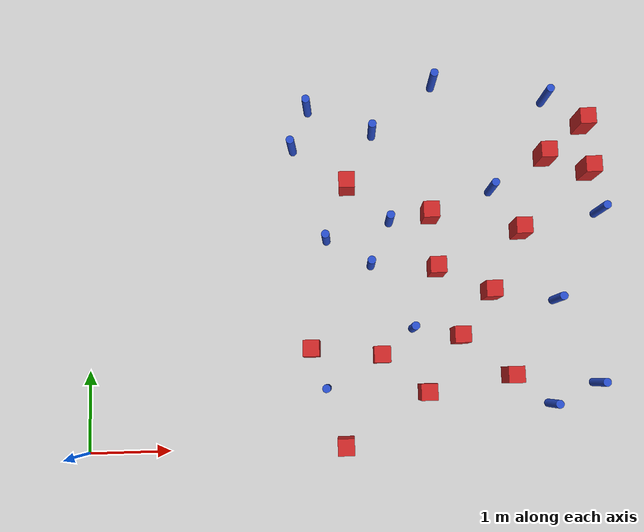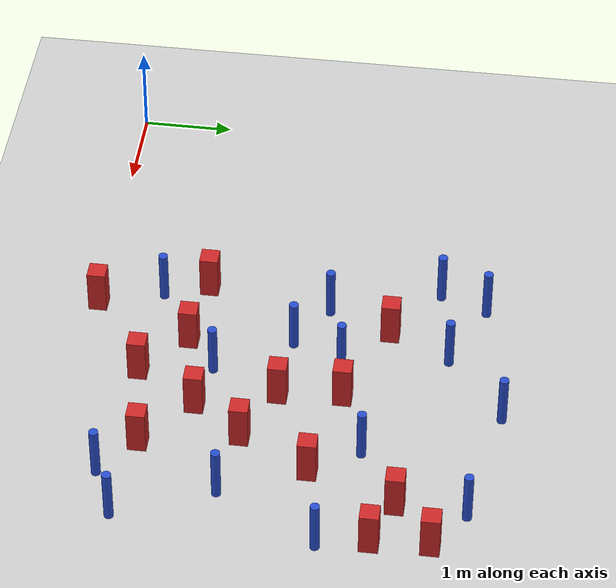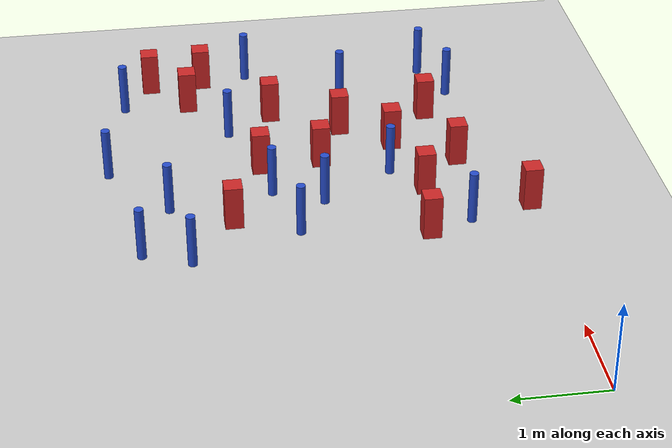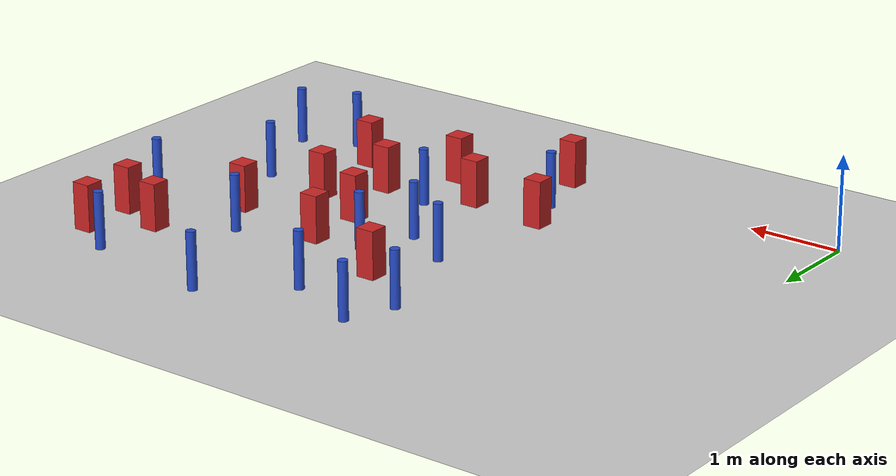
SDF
<sdf version="1.6">
 <world name="default">
  <model name="ground_plane">
   <static>1</static>
   <link name="link">
    <collision name="collision">
     <geometry><plane><normal>0 0 1</normal><size>100 100</size></plane></geometry>
     <surface><friction><ode><mu>100</mu><mu2>50</mu2></ode></friction></surface>
    </collision>
    <visual name="visual">
     <cast_shadows>0</cast_shadows>
     <geometry><plane><normal>0 0 1</normal><size>100 100</size></plane></geometry>
     <material>
      <ambient>1.0 1.0 1.0 1.0</ambient>
      <diffuse>0.8 0.8 0.8 1.0</diffuse>
      <specular>0.01 0.01 0.01 1.000000</specular>
     </material>
    </visual>
   </link>
  </model>
  <model name="pole_obstacle2">
   <static>true</static>
   <pose>3.53113890478 2.21635083177 -9.47619616065e-06 5.49618799737e-07 2.36310414051e-07 -1.55090534807e-07</pose>
   <link name="link">
    <pose>0 0 0.3 0 -0 0</pose>
    <inertial>
     <mass>1</mass>
     <inertia><ixx>0.145833</ixx><ixy>0</ixy><ixz>0</ixz><iyy>0.145833</iyy><iyz>0</iyz><izz>0.125</izz></inertia>
    </inertial>
    <collision name="collision">
     <geometry><cylinder><radius>0.05</radius><length>.6</length></cylinder></geometry>
    </collision>
    <visual name="visual">
     <geometry><cylinder><radius>0.05</radius><length>.6</length></cylinder></geometry>
     <material>
      <script><name>Gazebo/Blue</name><uri>file://media/materials/scripts/gazebo.material</uri></script>
     </material>
    </visual>
   </link>
  </model>
  <model name="pole_obstacle8">
   <static>true</static>
   <pose>5.81048403324 4.28842071337 -9.47619616065e-06 5.49618799737e-07 2.36310414037e-07 -1.55090534814e-07</pose>
   <link name="link">
    <pose>0 0 0.3 0 -0 0</pose>
    <inertial>
     <mass>1</mass>
     <inertia><ixx>0.145833</ixx><ixy>0</ixy><ixz>0</ixz><iyy>0.145833</iyy><iyz>0</iyz><izz>0.125</izz></inertia>
    </inertial>
    <collision name="collision">
     <geometry><cylinder><radius>0.05</radius><length>.6</length></cylinder></geometry>
    </collision>
    <visual name="visual">
     <geometry><cylinder><radius>0.05</radius><length>.6</length></cylinder></geometry>
     <material>
      <script><name>Gazebo/Blue</name><uri>file://media/materials/scripts/gazebo.material</uri></script>
     </material>
    </visual>
   </link>
  </model>
  <model name="square_post_obstacle28">
   <static>true</static>
   <pose>5.21339870408 0.800874993577 -6.11067671241e-07 -5.50515727128e-06 -8.79689657224e-07 2.37013304536e-05</pose>
   <link name="link">
    <pose>0 0 0.25 0 -0 0</pose>
    <inertial>
     <mass>100</mass>
     <inertia>
      <ixx>0.166667</ixx>
      <ixy>0</ixy>
      <ixz>0</ixz>
      <iyy>0.166667</iyy>
      <iyz>0</iyz>
      <izz>0.166667</izz>
     </inertia>
    </inertial>
    <collision name="collision"><geometry><box><size>.2 .2 .5</size></box></geometry></collision>
    <visual name="visual">
     <geometry><box><size>.2 .2 .5</size></box></geometry>
     <material>
      <script><name>Gazebo/Red</name><uri>file://media/materials/scripts/gazebo.material</uri></script>
     </material>
    </visual>
   </link>
  </model>
  <model name="pole_obstacle19">
   <static>true</static>
   <pose>5.80837014451 1.71492182112 -9.47619616065e-06 5.49618799738e-07 2.36310414071e-07 -1.55090534796e-07</pose>
   <link name="link">
    <pose>0 0 0.3 0 -0 0</pose>
    <inertial>
     <mass>1</mass>
     <inertia><ixx>0.145833</ixx><ixy>0</ixy><ixz>0</ixz><iyy>0.145833</iyy><iyz>0</iyz><izz>0.125</izz></inertia>
    </inertial>
    <collision name="collision">
     <geometry><cylinder><radius>0.05</radius><length>.6</length></cylinder></geometry>
    </collision>
    <visual name="visual">
     <geometry><cylinder><radius>0.05</radius><length>.6</length></cylinder></geometry>
     <material>
      <script><name>Gazebo/Blue</name><uri>file://media/materials/scripts/gazebo.material</uri></script>
     </material>
    </visual>
   </link>
  </model>
  <model name="square_post_obstacle32">
   <static>true</static>
   <pose>4.34222511146 2.15220514527 -6.11067671241e-07 -5.50515727128e-06 -8.79689657224e-07 2.37013304536e-05</pose>
   <link name="link">
    <pose>0 0 0.25 0 -0 0</pose>
    <inertial>
     <mass>100</mass>
     <inertia>
      <ixx>0.166667</ixx>
      <ixy>0</ixy>
      <ixz>0</ixz>
      <iyy>0.166667</iyy>
      <iyz>0</iyz>
      <izz>0.166667</izz>
     </inertia>
    </inertial>
    <collision name="collision"><geometry><box><size>.2 .2 .5</size></box></geometry></collision>
    <visual name="visual">
     <geometry><box><size>.2 .2 .5</size></box></geometry>
     <material>
      <script><name>Gazebo/Red</name><uri>file://media/materials/scripts/gazebo.material</uri></script>
     </material>
    </visual>
   </link>
  </model>
  <model name="pole_obstacle33">
   <static>true</static>
   <pose>2.94641307945 0.705355554668 -9.47619616065e-06 5.49618799738e-07 2.36310414075e-07 -1.55090534793e-07</pose>
   <link name="link">
    <pose>0 0 0.3 0 -0 0</pose>
    <inertial>
     <mass>1</mass>
     <inertia><ixx>0.145833</ixx><ixy>0</ixy><ixz>0</ixz><iyy>0.145833</iyy><iyz>0</iyz><izz>0.125</izz></inertia>
    </inertial>
    <collision name="collision">
     <geometry><cylinder><radius>0.05</radius><length>.6</length></cylinder></geometry>
    </collision>
    <visual name="visual">
     <geometry><cylinder><radius>0.05</radius><length>.6</length></cylinder></geometry>
     <material>
      <script><name>Gazebo/Blue</name><uri>file://media/materials/scripts/gazebo.material</uri></script>
     </material>
    </visual>
   </link>
  </model>
  <model name="square_post_obstacle42">
   <static>true</static>
   <pose>4.59890977952 1.30032857179 -6.11067671241e-07 -5.50515727128e-06 -8.79689657224e-07 2.37013304536e-05</pose>
   <link name="link">
    <pose>0 0 0.25 0 -0 0</pose>
    <inertial>
     <mass>100</mass>
     <inertia>
      <ixx>0.166667</ixx>
      <ixy>0</ixy>
      <ixz>0</ixz>
      <iyy>0.166667</iyy>
      <iyz>0</iyz>
      <izz>0.166667</izz>
     </inertia>
    </inertial>
    <collision name="collision"><geometry><box><size>.2 .2 .5</size></box></geometry></collision>
    <visual name="visual">
     <geometry><box><size>.2 .2 .5</size></box></geometry>
     <material>
      <script><name>Gazebo/Red</name><uri>file://media/materials/scripts/gazebo.material</uri></script>
     </material>
    </visual>
   </link>
  </model>
  <model name="square_post_obstacle57">
   <static>true</static>
   <pose>3.25659911849 3.23759663204 -6.11067671241e-07 -5.50515727128e-06 -8.79689657224e-07 2.37013304536e-05</pose>
   <link name="link">
    <pose>0 0 0.25 0 -0 0</pose>
    <inertial>
     <mass>100</mass>
     <inertia>
      <ixx>0.166667</ixx>
      <ixy>0</ixy>
      <ixz>0</ixz>
      <iyy>0.166667</iyy>
      <iyz>0</iyz>
      <izz>0.166667</izz>
     </inertia>
    </inertial>
    <collision name="collision"><geometry><box><size>.2 .2 .5</size></box></geometry></collision>
    <visual name="visual">
     <geometry><box><size>.2 .2 .5</size></box></geometry>
     <material>
      <script><name>Gazebo/Red</name><uri>file://media/materials/scripts/gazebo.material</uri></script>
     </material>
    </visual>
   </link>
  </model>
  <model name="pole_obstacle69">
   <static>true</static>
   <pose>5.67771473059 0.440851921993 -9.47619616065e-06 5.49618799737e-07 2.36310414057e-07 -1.55090534802e-07</pose>
   <link name="link">
    <pose>0 0 0.3 0 -0 0</pose>
    <inertial>
     <mass>1</mass>
     <inertia><ixx>0.145833</ixx><ixy>0</ixy><ixz>0</ixz><iyy>0.145833</iyy><iyz>0</iyz><izz>0.125</izz></inertia>
    </inertial>
    <collision name="collision">
     <geometry><cylinder><radius>0.05</radius><length>.6</length></cylinder></geometry>
    </collision>
    <visual name="visual">
     <geometry><cylinder><radius>0.05</radius><length>.6</length></cylinder></geometry>
     <material>
      <script><name>Gazebo/Blue</name><uri>file://media/materials/scripts/gazebo.material</uri></script>
     </material>
    </visual>
   </link>
  </model>
  <model name="pole_obstacle73">
   <static>true</static>
   <pose>3.59469836904 3.90290021158 -9.47619616065e-06 5.49618799737e-07 2.36310414051e-07 -1.55090534807e-07</pose>
   <link name="link">
    <pose>0 0 0.3 0 -0 0</pose>
    <inertial>
     <mass>1</mass>
     <inertia><ixx>0.145833</ixx><ixy>0</ixy><ixz>0</ixz><iyy>0.145833</iyy><iyz>0</iyz><izz>0.125</izz></inertia>
    </inertial>
    <collision name="collision">
     <geometry><cylinder><radius>0.05</radius><length>.6</length></cylinder></geometry>
    </collision>
    <visual name="visual">
     <geometry><cylinder><radius>0.05</radius><length>.6</length></cylinder></geometry>
     <material>
      <script><name>Gazebo/Blue</name><uri>file://media/materials/scripts/gazebo.material</uri></script>
     </material>
    </visual>
   </link>
  </model>
  <model name="square_post_obstacle78">
   <static>true</static>
   <pose>4.1668135629 0.625565197173 -6.11067671241e-07 -5.50515727128e-06 -8.79689657224e-07 2.37013304536e-05</pose>
   <link name="link">
    <pose>0 0 0.25 0 -0 0</pose>
    <inertial>
     <mass>100</mass>
     <inertia>
      <ixx>0.166667</ixx>
      <ixy>0</ixy>
      <ixz>0</ixz>
      <iyy>0.166667</iyy>
      <iyz>0</iyz>
      <izz>0.166667</izz>
     </inertia>
    </inertial>
    <collision name="collision"><geometry><box><size>.2 .2 .5</size></box></geometry></collision>
    <visual name="visual">
     <geometry><box><size>.2 .2 .5</size></box></geometry>
     <material>
      <script><name>Gazebo/Red</name><uri>file://media/materials/scripts/gazebo.material</uri></script>
     </material>
    </visual>
   </link>
  </model>
  <model name="pole_obstacle84">
   <static>true</static>
   <pose>6.24963681479 0.678285950661 -9.47619616065e-06 5.49618799737e-07 2.36310414061e-07 -1.550905348e-07</pose>
   <link name="link">
    <pose>0 0 0.3 0 -0 0</pose>
    <inertial>
     <mass>1</mass>
     <inertia><ixx>0.145833</ixx><ixy>0</ixy><ixz>0</ixz><iyy>0.145833</iyy><iyz>0</iyz><izz>0.125</izz></inertia>
    </inertial>
    <collision name="collision">
     <geometry><cylinder><radius>0.05</radius><length>.6</length></cylinder></geometry>
    </collision>
    <visual name="visual">
     <geometry><cylinder><radius>0.05</radius><length>.6</length></cylinder></geometry>
     <material>
      <script><name>Gazebo/Blue</name><uri>file://media/materials/scripts/gazebo.material</uri></script>
     </material>
    </visual>
   </link>
  </model>
  <model name="pole_obstacle100">
   <static>true</static>
   <pose>3.77919426747 2.76175371669 -9.47619616065e-06 5.49618799737e-07 2.36310414051e-07 -1.55090534807e-07</pose>
   <link name="link">
    <pose>0 0 0.3 0 -0 0</pose>
    <inertial>
     <mass>1</mass>
     <inertia><ixx>0.145833</ixx><ixy>0</ixy><ixz>0</ixz><iyy>0.145833</iyy><iyz>0</iyz><izz>0.125</izz></inertia>
    </inertial>
    <collision name="collision">
     <geometry><cylinder><radius>0.05</radius><length>.6</length></cylinder></geometry>
    </collision>
    <visual name="visual">
     <geometry><cylinder><radius>0.05</radius><length>.6</length></cylinder></geometry>
     <material>
      <script><name>Gazebo/Blue</name><uri>file://media/materials/scripts/gazebo.material</uri></script>
     </material>
    </visual>
   </link>
  </model>
  <model name="pole_obstacle117">
   <static>true</static>
   <pose>4.3845559083 4.53126486842 -9.47619616065e-06 5.49618799737e-07 2.36310414037e-07 -1.55090534814e-07</pose>
   <link name="link">
    <pose>0 0 0.3 0 -0 0</pose>
    <inertial>
     <mass>1</mass>
     <inertia><ixx>0.145833</ixx><ixy>0</ixy><ixz>0</ixz><iyy>0.145833</iyy><iyz>0</iyz><izz>0.125</izz></inertia>
    </inertial>
    <collision name="collision">
     <geometry><cylinder><radius>0.05</radius><length>.6</length></cylinder></geometry>
    </collision>
    <visual name="visual">
     <geometry><cylinder><radius>0.05</radius><length>.6</length></cylinder></geometry>
     <material>
      <script><name>Gazebo/Blue</name><uri>file://media/materials/scripts/gazebo.material</uri></script>
     </material>
    </visual>
   </link>
  </model>
  <model name="square_post_obstacle109">
   <static>true</static>
   <pose>5.412288739 2.6043102466 -6.11067671241e-07 -5.50515727128e-06 -8.79689657224e-07 2.37013304536e-05</pose>
   <link name="link">
    <pose>0 0 0.25 0 -0 0</pose>
    <inertial>
     <mass>100</mass>
     <inertia>
      <ixx>0.166667</ixx>
      <ixy>0</ixy>
      <ixz>0</ixz>
      <iyy>0.166667</iyy>
      <iyz>0</iyz>
      <izz>0.166667</izz>
     </inertia>
    </inertial>
    <collision name="collision"><geometry><box><size>.2 .2 .5</size></box></geometry></collision>
    <visual name="visual">
     <geometry><box><size>.2 .2 .5</size></box></geometry>
     <material>
      <script><name>Gazebo/Red</name><uri>file://media/materials/scripts/gazebo.material</uri></script>
     </material>
    </visual>
   </link>
  </model>
  <model name="square_post_obstacle110">
   <static>true</static>
   <pose>2.77015485849 1.1883107417 -6.11067671241e-07 -5.50515727128e-06 -8.79689657224e-07 2.37013304536e-05</pose>
   <link name="link">
    <pose>0 0 0.25 0 -0 0</pose>
    <inertial>
     <mass>100</mass>
     <inertia>
      <ixx>0.166667</ixx>
      <ixy>0</ixy>
      <ixz>0</ixz>
      <iyy>0.166667</iyy>
      <iyz>0</iyz>
      <izz>0.166667</izz>
     </inertia>
    </inertial>
    <collision name="collision"><geometry><box><size>.2 .2 .5</size></box></geometry></collision>
    <visual name="visual">
     <geometry><box><size>.2 .2 .5</size></box></geometry>
     <material>
      <script><name>Gazebo/Red</name><uri>file://media/materials/scripts/gazebo.material</uri></script>
     </material>
    </visual>
   </link>
  </model>
  <model name="square_post_obstacle111">
   <static>true</static>
   <pose>3.15787792161 0.0123868509678 -6.11067671241e-07 -5.50515727128e-06 -8.79689657224e-07 2.37013304536e-05</pose>
   <link name="link">
    <pose>0 0 0.25 0 -0 0</pose>
    <inertial>
     <mass>100</mass>
     <inertia>
      <ixx>0.166667</ixx>
      <ixy>0</ixy>
      <ixz>0</ixz>
      <iyy>0.166667</iyy>
      <iyz>0</iyz>
      <izz>0.166667</izz>
     </inertia>
    </inertial>
    <collision name="collision"><geometry><box><size>.2 .2 .5</size></box></geometry></collision>
    <visual name="visual">
     <geometry><box><size>.2 .2 .5</size></box></geometry>
     <material>
      <script><name>Gazebo/Red</name><uri>file://media/materials/scripts/gazebo.material</uri></script>
     </material>
    </visual>
   </link>
  </model>
  <model name="pole_obstacle124">
   <static>true</static>
   <pose>6.40589945329 2.80545967652 -9.47619616065e-06 5.49618799738e-07 2.36310414051e-07 -1.55090534805e-07</pose>
   <link name="link">
    <pose>0 0 0.3 0 -0 0</pose>
    <inertial>
     <mass>1</mass>
     <inertia><ixx>0.145833</ixx><ixy>0</ixy><ixz>0</ixz><iyy>0.145833</iyy><iyz>0</iyz><izz>0.125</izz></inertia>
    </inertial>
    <collision name="collision">
     <geometry><cylinder><radius>0.05</radius><length>.6</length></cylinder></geometry>
    </collision>
    <visual name="visual">
     <geometry><cylinder><radius>0.05</radius><length>.6</length></cylinder></geometry>
     <material>
      <script><name>Gazebo/Blue</name><uri>file://media/materials/scripts/gazebo.material</uri></script>
     </material>
    </visual>
   </link>
  </model>
  <model name="pole_obstacle127">
   <static>true</static>
   <pose>4.0266687982 1.41125415819 -9.4761961606e-06 5.49618799729e-07 2.36310414004e-07 -1.55090534822e-07</pose>
   <link name="link">
    <pose>0 0 0.3 0 -0 0</pose>
    <inertial>
     <mass>1</mass>
     <inertia><ixx>0.145833</ixx><ixy>0</ixy><ixz>0</ixz><iyy>0.145833</iyy><iyz>0</iyz><izz>0.125</izz></inertia>
    </inertial>
    <collision name="collision">
     <geometry><cylinder><radius>0.05</radius><length>.6</length></cylinder></geometry>
    </collision>
    <visual name="visual">
     <geometry><cylinder><radius>0.05</radius><length>.6</length></cylinder></geometry>
     <material>
      <script><name>Gazebo/Blue</name><uri>file://media/materials/scripts/gazebo.material</uri></script>
     </material>
    </visual>
   </link>
  </model>
  <model name="square_post_obstacle116">
   <static>true</static>
   <pose>6.3126535288 3.34329859397 -6.11067671241e-07 -5.50515727128e-06 -8.79689657224e-07 2.37013304536e-05</pose>
   <link name="link">
    <pose>0 0 0.25 0 -0 0</pose>
    <inertial>
     <mass>100</mass>
     <inertia>
      <ixx>0.166667</ixx>
      <ixy>0</ixy>
      <ixz>0</ixz>
      <iyy>0.166667</iyy>
      <iyz>0</iyz>
      <izz>0.166667</izz>
     </inertia>
    </inertial>
    <collision name="collision"><geometry><box><size>.2 .2 .5</size></box></geometry></collision>
    <visual name="visual">
     <geometry><box><size>.2 .2 .5</size></box></geometry>
     <material>
      <script><name>Gazebo/Red</name><uri>file://media/materials/scripts/gazebo.material</uri></script>
     </material>
    </visual>
   </link>
  </model>
  <model name="square_post_obstacle126">
   <static>true</static>
   <pose>5.00595006204 1.84082103899 -6.11067671241e-07 -5.50515727128e-06 -8.79689657224e-07 2.37013304536e-05</pose>
   <link name="link">
    <pose>0 0 0.25 0 -0 0</pose>
    <inertial>
     <mass>100</mass>
     <inertia>
      <ixx>0.166667</ixx>
      <ixy>0</ixy>
      <ixz>0</ixz>
      <iyy>0.166667</iyy>
      <iyz>0</iyz>
      <izz>0.166667</izz>
     </inertia>
    </inertial>
    <collision name="collision"><geometry><box><size>.2 .2 .5</size></box></geometry></collision>
    <visual name="visual">
     <geometry><box><size>.2 .2 .5</size></box></geometry>
     <material>
      <script><name>Gazebo/Red</name><uri>file://media/materials/scripts/gazebo.material</uri></script>
     </material>
    </visual>
   </link>
  </model>
  <model name="pole_obstacle162">
   <static>true</static>
   <pose>2.57808146272 3.72949033106 -9.47619616065e-06 5.49618799737e-07 2.36310414051e-07 -1.55090534807e-07</pose>
   <link name="link">
    <pose>0 0 0.3 0 -0 0</pose>
    <inertial>
     <mass>1</mass>
     <inertia><ixx>0.145833</ixx><ixy>0</ixy><ixz>0</ixz><iyy>0.145833</iyy><iyz>0</iyz><izz>0.125</izz></inertia>
    </inertial>
    <collision name="collision">
     <geometry><cylinder><radius>0.05</radius><length>.6</length></cylinder></geometry>
    </collision>
    <visual name="visual">
     <geometry><cylinder><radius>0.05</radius><length>.6</length></cylinder></geometry>
     <material>
      <script><name>Gazebo/Blue</name><uri>file://media/materials/scripts/gazebo.material</uri></script>
     </material>
    </visual>
   </link>
  </model>
  <model name="pole_obstacle170">
   <static>true</static>
   <pose>2.98052570681 2.54842222427 -9.47619616065e-06 5.49618799737e-07 2.36310414051e-07 -1.55090534807e-07</pose>
   <link name="link">
    <pose>0 0 0.3 0 -0 0</pose>
    <inertial>
     <mass>1</mass>
     <inertia><ixx>0.145833</ixx><ixy>0</ixy><ixz>0</ixz><iyy>0.145833</iyy><iyz>0</iyz><izz>0.125</izz></inertia>
    </inertial>
    <collision name="collision">
     <geometry><cylinder><radius>0.05</radius><length>.6</length></cylinder></geometry>
    </collision>
    <visual name="visual">
     <geometry><cylinder><radius>0.05</radius><length>.6</length></cylinder></geometry>
     <material>
      <script><name>Gazebo/Blue</name><uri>file://media/materials/scripts/gazebo.material</uri></script>
     </material>
    </visual>
   </link>
  </model>
  <model name="square_post_obstacle166">
   <static>true</static>
   <pose>3.62420302376 1.09055989901 -6.11067671241e-07 -5.50515727128e-06 -8.79689657224e-07 2.37013304536e-05</pose>
   <link name="link">
    <pose>0 0 0.25 0 -0 0</pose>
    <inertial>
     <mass>100</mass>
     <inertia>
      <ixx>0.166667</ixx>
      <ixy>0</ixy>
      <ixz>0</ixz>
      <iyy>0.166667</iyy>
      <iyz>0</iyz>
      <izz>0.166667</izz>
     </inertia>
    </inertial>
    <collision name="collision"><geometry><box><size>.2 .2 .5</size></box></geometry></collision>
    <visual name="visual">
     <geometry><box><size>.2 .2 .5</size></box></geometry>
     <material>
      <script><name>Gazebo/Red</name><uri>file://media/materials/scripts/gazebo.material</uri></script>
     </material>
    </visual>
   </link>
  </model>
  <model name="pole_obstacle183">
   <static>true</static>
   <pose>2.78158310172 4.24239045129 -9.47619616065e-06 5.49618799738e-07 2.3631041406e-07 -1.55090534801e-07</pose>
   <link name="link">
    <pose>0 0 0.3 0 -0 0</pose>
    <inertial>
     <mass>1</mass>
     <inertia><ixx>0.145833</ixx><ixy>0</ixy><ixz>0</ixz><iyy>0.145833</iyy><iyz>0</iyz><izz>0.125</izz></inertia>
    </inertial>
    <collision name="collision">
     <geometry><cylinder><radius>0.05</radius><length>.6</length></cylinder></geometry>
    </collision>
    <visual name="visual">
     <geometry><cylinder><radius>0.05</radius><length>.6</length></cylinder></geometry>
     <material>
      <script><name>Gazebo/Blue</name><uri>file://media/materials/scripts/gazebo.material</uri></script>
     </material>
    </visual>
   </link>
  </model>
  <model name="square_post_obstacle174">
   <static>true</static>
   <pose>4.28757438432 2.83598342101 -6.11067671241e-07 -5.50515727128e-06 -8.79689657224e-07 2.37013304536e-05</pose>
   <link name="link">
    <pose>0 0 0.25 0 -0 0</pose>
    <inertial>
     <mass>100</mass>
     <inertia>
      <ixx>0.166667</ixx>
      <ixy>0</ixy>
      <ixz>0</ixz>
      <iyy>0.166667</iyy>
      <iyz>0</iyz>
      <izz>0.166667</izz>
     </inertia>
    </inertial>
    <collision name="collision"><geometry><box><size>.2 .2 .5</size></box></geometry></collision>
    <visual name="visual">
     <geometry><box><size>.2 .2 .5</size></box></geometry>
     <material>
      <script><name>Gazebo/Red</name><uri>file://media/materials/scripts/gazebo.material</uri></script>
     </material>
    </visual>
   </link>
  </model>
  <model name="square_post_obstacle187">
   <static>true</static>
   <pose>6.28089710742 3.95743381405 -6.11067671241e-07 -5.50515727128e-06 -8.79689657224e-07 2.37013304536e-05</pose>
   <link name="link">
    <pose>0 0 0.25 0 -0 0</pose>
    <inertial>
     <mass>100</mass>
     <inertia>
      <ixx>0.166667</ixx>
      <ixy>0</ixy>
      <ixz>0</ixz>
      <iyy>0.166667</iyy>
      <iyz>0</iyz>
      <izz>0.166667</izz>
     </inertia>
    </inertial>
    <collision name="collision"><geometry><box><size>.2 .2 .5</size></box></geometry></collision>
    <visual name="visual">
     <geometry><box><size>.2 .2 .5</size></box></geometry>
     <material>
      <script><name>Gazebo/Red</name><uri>file://media/materials/scripts/gazebo.material</uri></script>
     </material>
    </visual>
   </link>
  </model>
  <model name="pole_obstacle202">
   <static>true</static>
   <pose>5.07016011007 3.12417260836 -9.47619616065e-06 5.49618799738e-07 2.36310414051e-07 -1.55090534805e-07</pose>
   <link name="link">
    <pose>0 0 0.3 0 -0 0</pose>
    <inertial>
     <mass>1</mass>
     <inertia><ixx>0.145833</ixx><ixy>0</ixy><ixz>0</ixz><iyy>0.145833</iyy><iyz>0</iyz><izz>0.125</izz></inertia>
    </inertial>
    <collision name="collision">
     <geometry><cylinder><radius>0.05</radius><length>.6</length></cylinder></geometry>
    </collision>
    <visual name="visual">
     <geometry><cylinder><radius>0.05</radius><length>.6</length></cylinder></geometry>
     <material>
      <script><name>Gazebo/Blue</name><uri>file://media/materials/scripts/gazebo.material</uri></script>
     </material>
    </visual>
   </link>
  </model>
  <model name="square_post_obstacle213">
   <static>true</static>
   <pose>5.7737599502 3.54581997688 -6.11067671241e-07 -5.50515727128e-06 -8.79689657224e-07 2.37013304536e-05</pose>
   <link name="link">
    <pose>0 0 0.25 0 -0 0</pose>
    <inertial>
     <mass>100</mass>
     <inertia>
      <ixx>0.166667</ixx>
      <ixy>0</ixy>
      <ixz>0</ixz>
      <iyy>0.166667</iyy>
      <iyz>0</iyz>
      <izz>0.166667</izz>
     </inertia>
    </inertial>
    <collision name="collision"><geometry><box><size>.2 .2 .5</size></box></geometry></collision>
    <visual name="visual">
     <geometry><box><size>.2 .2 .5</size></box></geometry>
     <material>
      <script><name>Gazebo/Red</name><uri>file://media/materials/scripts/gazebo.material</uri></script>
     </material>
    </visual>
   </link>
  </model>
 </world>
</sdf>
